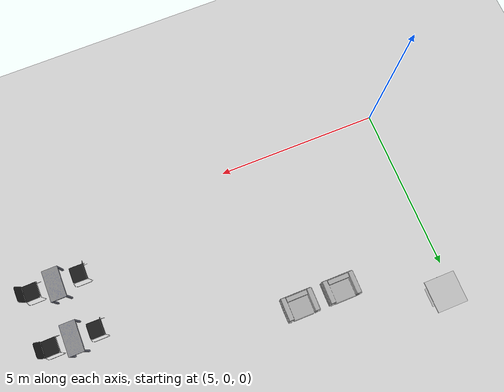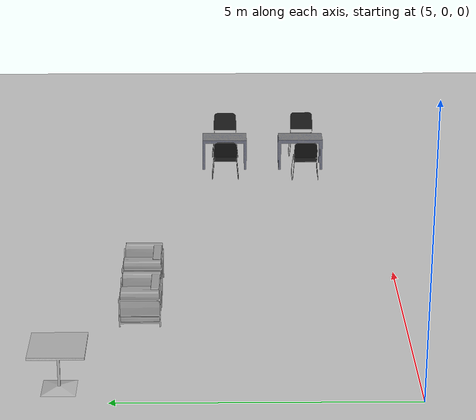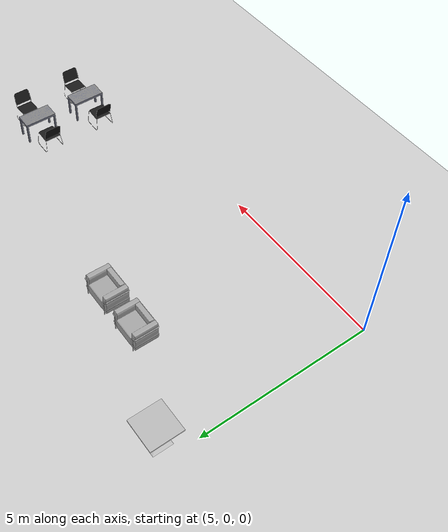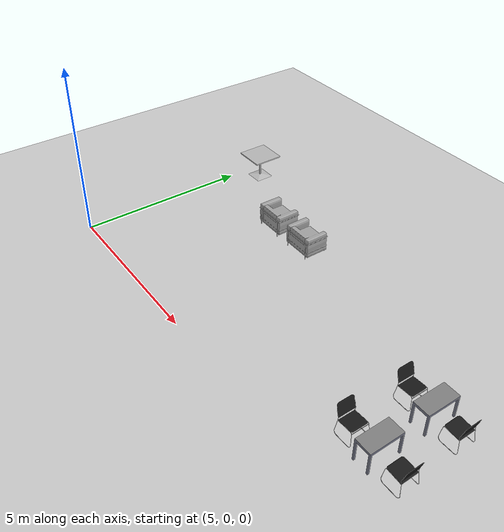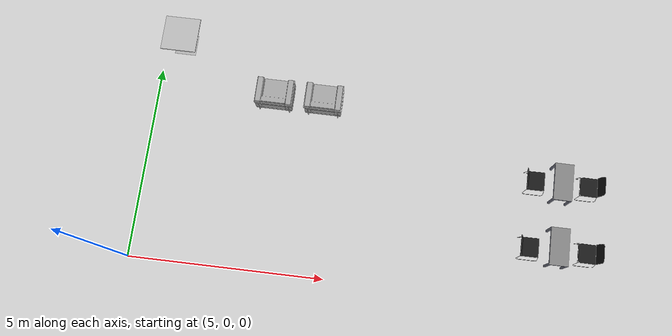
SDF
<sdf version="1.6">
 <world name="default">
  <model name="ground_plane">
   <static>1</static>
   <link name="link">
    <collision name="collision">
     <laser_retro>255</laser_retro>
     <geometry><plane><normal>0 0 1</normal><size>100 100</size></plane></geometry>
     <surface><friction><ode><mu>100</mu><mu2>50</mu2></ode></friction></surface>
    </collision>
    <visual name="visual">
     <cast_shadows>0</cast_shadows>
     <geometry><plane><normal>0 0 1</normal><size>100 100</size></plane></geometry>
     <material>
      <script><uri>file://media/materials/scripts/gazebo.material</uri><name>Gazebo/Grey</name></script>
     </material>
    </visual>
    <velocity_decay><linear>0</linear><angular>0</angular></velocity_decay>
   </link>
  </model>
  <light name="sun" type="directional">
   <pose>0 0 10 0 -0 0</pose>
   <diffuse>0.8 0.8 0.8 1</diffuse>
   <specular>0.2 0.2 0.2 1</specular>
   <attenuation>
    <range>1000</range>
    <constant>0.9</constant>
    <linear>0.01</linear>
    <quadratic>0.001</quadratic>
   </attenuation>
   <direction>-0.5 0.1 -0.9</direction>
  </light>
  <physics name="default_physics" default="0" type="ode">
   <max_step_size>0.001</max_step_size>
   <real_time_factor>1</real_time_factor>
   <real_time_update_rate>1000</real_time_update_rate>
  </physics>
  <scene><ambient>0.4 0.4 0.4 1</ambient><background>0.7 0.7 0.7 1</background><shadows>1</shadows></scene>
  <spherical_coordinates>
   <surface_model>EARTH_WGS84</surface_model>
   <latitude_deg>0</latitude_deg>
   <longitude_deg>0</longitude_deg>
   <elevation>0</elevation>
   <heading_deg>0</heading_deg>
  </spherical_coordinates>
  <gravity>0 0 -9.8</gravity>
  <magnetic_field>6e-06 2.3e-05 -4.2e-05</magnetic_field>
  <atmosphere type="adiabatic"/>
  <model name="chair_set_1">
   <link name="link_16">
    <pose>0.07217 0.114259 -0.032065 0 -0 1.57</pose>
    <visual name="visual">
     <geometry><mesh><uri>model://chair_set_1/meshes/chair_frame.dae</uri><scale>1 1 1</scale></mesh></geometry>
     <material>
      <lighting>1</lighting>
      <ambient>0.3 0.3 0.3 1</ambient>
      <diffuse>0.7 0.7 0.7 1</diffuse>
      <specular>0.01 0.01 0.01 1</specular>
      <emissive>0 0 0 1</emissive>
      <shader type="vertex"><normal_map>__default__</normal_map></shader>
     </material>
    </visual>
    <collision name="collision">
     <geometry><mesh><uri>model://chair_set_1/meshes/chair_frame.dae</uri><scale>1 1 1</scale></mesh></geometry>
    </collision>
   </link>
   <link name="link_17">
    <pose>0.069192 0.1237 -0.032065 0 -0 1.57</pose>
    <visual name="visual">
     <geometry><mesh><uri>model://chair_set_1/meshes/chair_cushions.dae</uri><scale>1 1 1</scale></mesh></geometry>
     <material>
      <script>
       <uri>model://chair_set_1/materials/scripts</uri>
       <uri>model://chair_set_1/materials/textures</uri>
       <name>chair_set_1</name>
      </script>
     </material>
    </visual>
    <collision name="collision">
     <geometry><mesh><uri>model://chair_set_1/meshes/chair_cushions.dae</uri><scale>1 1 1</scale></mesh></geometry>
    </collision>
   </link>
   <link name="link_18">
    <pose>0.606963 -0.367766 -0.032065 0 -0 0</pose>
    <visual name="visual">
     <geometry>
      <mesh><uri>model://chair_set_1/meshes/sofa_cushions_back.dae</uri><scale>1 1 1</scale></mesh>
     </geometry>
     <material>
      <script>
       <uri>model://chair_set_1/materials/scripts</uri>
       <uri>model://chair_set_1/materials/textures</uri>
       <name>chair_set_1</name>
      </script>
     </material>
    </visual>
    <collision name="collision">
     <geometry>
      <mesh><uri>model://chair_set_1/meshes/sofa_cushions_back.dae</uri><scale>1 1 1</scale></mesh>
     </geometry>
    </collision>
   </link>
   <static>1</static>
   <pose>8.13741 4.60255 0 0 -0 3.14</pose>
  </model>
  <model name="chair_set_1_0">
   <link name="link_16">
    <pose>0.07217 0.114259 -0.032065 0 -0 1.57</pose>
    <visual name="visual">
     <geometry><mesh><uri>model://chair_set_1/meshes/chair_frame.dae</uri><scale>1 1 1</scale></mesh></geometry>
     <material>
      <lighting>1</lighting>
      <ambient>0.3 0.3 0.3 1</ambient>
      <diffuse>0.7 0.7 0.7 1</diffuse>
      <specular>0.01 0.01 0.01 1</specular>
      <emissive>0 0 0 1</emissive>
      <shader type="vertex"><normal_map>__default__</normal_map></shader>
     </material>
    </visual>
    <collision name="collision">
     <geometry><mesh><uri>model://chair_set_1/meshes/chair_frame.dae</uri><scale>1 1 1</scale></mesh></geometry>
    </collision>
   </link>
   <link name="link_17">
    <pose>0.069192 0.1237 -0.032065 0 -0 1.57</pose>
    <visual name="visual">
     <geometry><mesh><uri>model://chair_set_1/meshes/chair_cushions.dae</uri><scale>1 1 1</scale></mesh></geometry>
     <material>
      <script>
       <uri>model://chair_set_1/materials/scripts</uri>
       <uri>model://chair_set_1/materials/textures</uri>
       <name>chair_set_1</name>
      </script>
     </material>
    </visual>
    <collision name="collision">
     <geometry><mesh><uri>model://chair_set_1/meshes/chair_cushions.dae</uri><scale>1 1 1</scale></mesh></geometry>
    </collision>
   </link>
   <link name="link_18">
    <pose>0.606963 -0.367766 -0.032065 0 -0 0</pose>
    <visual name="visual">
     <geometry>
      <mesh><uri>model://chair_set_1/meshes/sofa_cushions_back.dae</uri><scale>1 1 1</scale></mesh>
     </geometry>
     <material>
      <script>
       <uri>model://chair_set_1/materials/scripts</uri>
       <uri>model://chair_set_1/materials/textures</uri>
       <name>chair_set_1</name>
      </script>
     </material>
    </visual>
    <collision name="collision">
     <geometry>
      <mesh><uri>model://chair_set_1/meshes/sofa_cushions_back.dae</uri><scale>1 1 1</scale></mesh>
     </geometry>
    </collision>
   </link>
   <static>1</static>
   <pose>9.42975 4.60605 0 0 -0 3.14</pose>
  </model>
  <model name="table_dining">
   <link name="link_24">
    <visual name="visual">
     <geometry><mesh><uri>model://table_dining/meshes/table2.dae</uri><scale>1 1 1</scale></mesh></geometry>
     <material>
      <script>
       <uri>model://table_dining/materials/scripts</uri>
       <uri>model://table_dining/materials/textures</uri>
       <name>dining_table</name>
      </script>
     </material>
    </visual>
    <collision name="collision">
     <geometry><mesh><uri>model://table_dining/meshes/table2.dae</uri><scale>1 1 1</scale></mesh></geometry>
    </collision>
   </link>
   <static>1</static>
   <pose>15.7387 1.4437 0 0 -0 1.57078</pose>
  </model>
  <model name="table_dining_0">
   <link name="link_24">
    <visual name="visual">
     <geometry><mesh><uri>model://table_dining/meshes/table2.dae</uri><scale>1 1 1</scale></mesh></geometry>
     <material>
      <script>
       <uri>model://table_dining/materials/scripts</uri>
       <uri>model://table_dining/materials/textures</uri>
       <name>dining_table</name>
      </script>
     </material>
    </visual>
    <collision name="collision">
     <geometry><mesh><uri>model://table_dining/meshes/table2.dae</uri><scale>1 1 1</scale></mesh></geometry>
    </collision>
   </link>
   <static>1</static>
   <pose>15.7404 3.07685 0 0 -0 1.56576</pose>
  </model>
  <model name="chair_3">
   <link name="link_4">
    <pose>-0.282457 -0.259387 0 0 -0 0</pose>
    <visual name="visual">
     <geometry><mesh><uri>model://chair_3/meshes/model.dae</uri><scale>1 1 1</scale></mesh></geometry>
     <material>
      <lighting>1</lighting>
      <ambient>0 0 0 1</ambient>
      <diffuse>0.1 0.1 0.1 1</diffuse>
      <specular>0.01 0.01 0.01 1</specular>
      <emissive>0 0 0 1</emissive>
     </material>
    </visual>
    <collision name="collision">
     <geometry><mesh><uri>model://chair_3/meshes/model.dae</uri><scale>1 1 1</scale></mesh></geometry>
    </collision>
   </link>
   <static>1</static>
   <pose>15.0754 3.0709 0 0 -0 1.57</pose>
  </model>
  <model name="chair_3_0">
   <link name="link_4">
    <pose>-0.282457 -0.259387 0 0 -0 0</pose>
    <visual name="visual">
     <geometry><mesh><uri>model://chair_3/meshes/model.dae</uri><scale>1 1 1</scale></mesh></geometry>
     <material>
      <lighting>1</lighting>
      <ambient>0 0 0 1</ambient>
      <diffuse>0.1 0.1 0.1 1</diffuse>
      <specular>0.01 0.01 0.01 1</specular>
      <emissive>0 0 0 1</emissive>
     </material>
    </visual>
    <collision name="collision">
     <geometry><mesh><uri>model://chair_3/meshes/model.dae</uri><scale>1 1 1</scale></mesh></geometry>
    </collision>
   </link>
   <static>1</static>
   <pose>16.4137 3.06403 0 0 0 -1.57</pose>
  </model>
  <model name="chair_3_1">
   <link name="link_4">
    <pose>-0.282457 -0.259387 0 0 -0 0</pose>
    <visual name="visual">
     <geometry><mesh><uri>model://chair_3/meshes/model.dae</uri><scale>1 1 1</scale></mesh></geometry>
     <material>
      <lighting>1</lighting>
      <ambient>0 0 0 1</ambient>
      <diffuse>0.1 0.1 0.1 1</diffuse>
      <specular>0.01 0.01 0.01 1</specular>
      <emissive>0 0 0 1</emissive>
     </material>
    </visual>
    <collision name="collision">
     <geometry><mesh><uri>model://chair_3/meshes/model.dae</uri><scale>1 1 1</scale></mesh></geometry>
    </collision>
   </link>
   <static>1</static>
   <pose>15.0378 1.37657 0 0 -0 1.57</pose>
  </model>
  <model name="chair_3_2">
   <link name="link_4">
    <pose>-0.282457 -0.259387 0 0 -0 0</pose>
    <visual name="visual">
     <geometry><mesh><uri>model://chair_3/meshes/model.dae</uri><scale>1 1 1</scale></mesh></geometry>
     <material>
      <lighting>1</lighting>
      <ambient>0 0 0 1</ambient>
      <diffuse>0.1 0.1 0.1 1</diffuse>
      <specular>0.01 0.01 0.01 1</specular>
      <emissive>0 0 0 1</emissive>
     </material>
    </visual>
    <collision name="collision">
     <geometry><mesh><uri>model://chair_3/meshes/model.dae</uri><scale>1 1 1</scale></mesh></geometry>
    </collision>
   </link>
   <static>1</static>
   <pose>16.459 1.37899 0 0 0 -1.57</pose>
  </model>
  <model name="cafe_table">
   <static>1</static>
   <link name="link">
    <collision name="surface">
     <pose>0 0 0.755 0 -0 0</pose>
     <geometry><box><size>0.913 0.913 0.04</size></box></geometry>
    </collision>
    <collision name="column">
     <pose>0 0 0.37 0 -0 0</pose>
     <geometry><box><size>0.042 0.042 0.74</size></box></geometry>
    </collision>
    <collision name="base">
     <pose>0 0 0.02 0 -0 0</pose>
     <geometry><box><size>0.56 0.56 0.04</size></box></geometry>
    </collision>
    <visual name="visual">
     <geometry><mesh><uri>model://cafe_table/meshes/cafe_table.dae</uri></mesh></geometry>
    </visual>
   </link>
   <pose>5.50156 5.81528 0 0 -0 0</pose>
  </model>
 </world>
</sdf>
